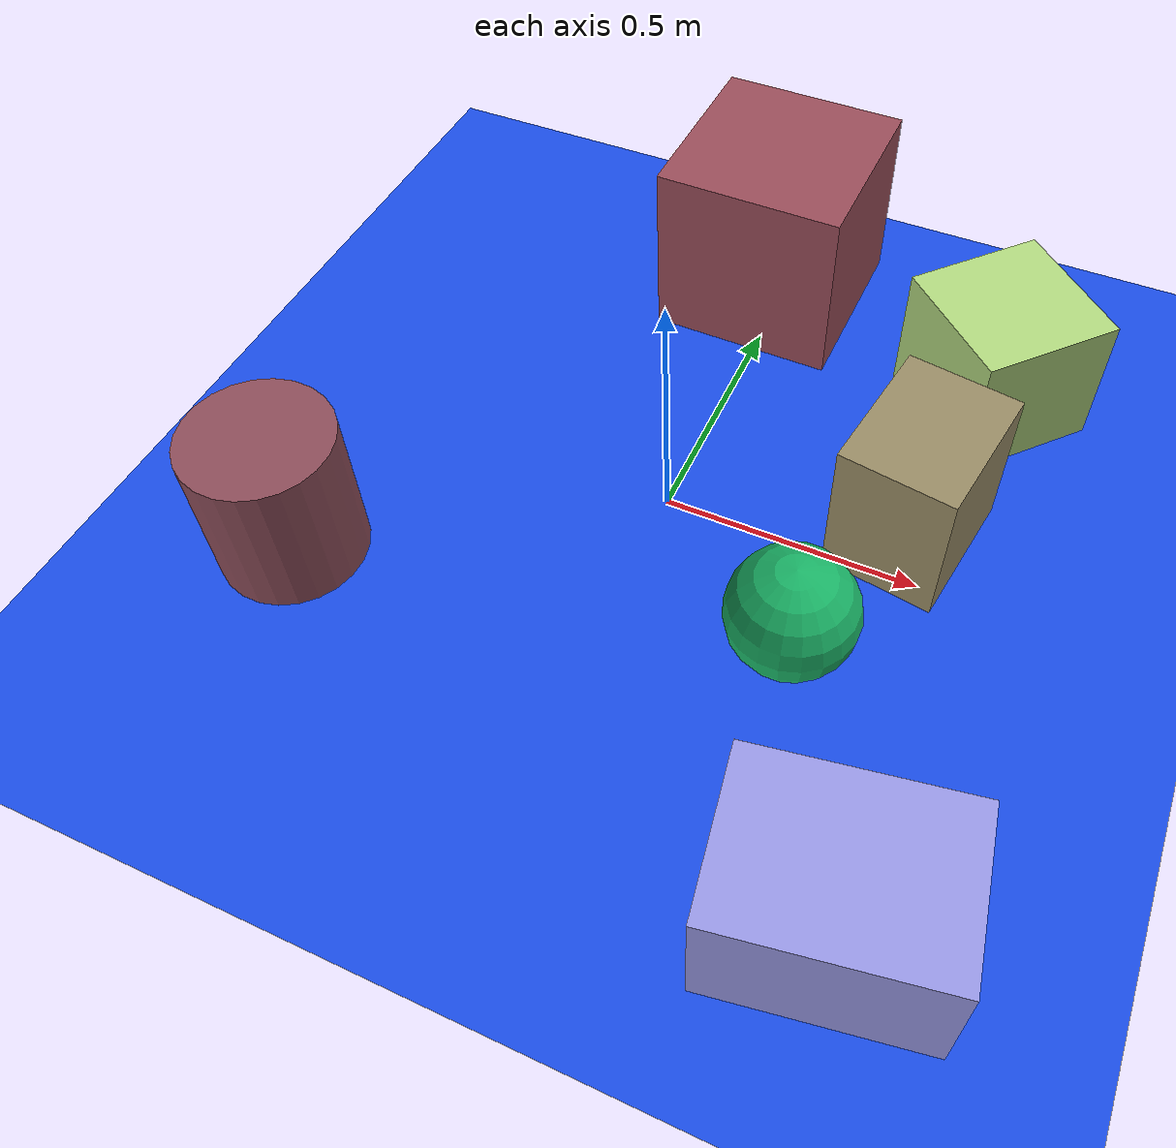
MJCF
<mujoco>
   <asset>
<texture type="skybox" builtin="gradient" rgb1="0.0 0.8 0.5" rgb2="0.2 0.0 0.6" width="500" height="500"/>
<texture name="checker_0" builtin="checker" rgb1="0.8 0.3 0.6" rgb2="0.4 0.8 0.2" width="500" height="500"/>
<texture name="gradient_1" builtin="gradient" rgb1="0.3 0.1 0.2" rgb2="0.8 0.5 0.5" width="500" height="500"/>
<texture name="gradient_2" builtin="gradient" rgb1="0.9 1.0 0.7" rgb2="0.5 0.7 0.3" width="500" height="500"/>
<texture name="flat_3" builtin="flat" rgb1="0.6 0.6 0.9" rgb2="0.6 0.6 0.9"  width="500" height="500"/>
<texture name="flat_4" builtin="flat" rgb1="0.1 0.7 0.4" rgb2="0.1 0.7 0.4"  width="500" height="500"/>
<texture name="gradient_5" builtin="gradient" rgb1="0.4 0.1 0.1" rgb2="0.8 0.5 0.6" width="500" height="500"/><material name="checker_0_mat" reflectance="0.34630741940807375" texrepeat="6 6" texture="checker_0" texuniform="false" />
<material name="gradient_1_mat" reflectance="0.4006193611332035" texture="gradient_1" texuniform="true"/>
<material name="gradient_2_mat" reflectance="0.8158389596095754" texture="gradient_2" texuniform="true"/>
<material name="flat_3_mat" reflectance="0.7538101564954601" texture="flat_3" texuniform="true"/>
<material name="flat_4_mat" reflectance="0.3793935328115371" texture="flat_4" texuniform="true"/>
<material name="gradient_5_mat" reflectance="0.608035890433957" texture="gradient_5" texuniform="true"/>
   </asset>

   <worldbody>
     <geom type="plane" size="1 1 0.1" rgba="0.1 0.3 0.9 1" />
<light pos="0.8342219312845953 -0.27823041773338275 2" dir="0 0 -1" cutoff="90" diffuse="1 1 1" specular="1 1 1"/>
<light pos="-0.4238654747417714 0.00329689649857956 2" dir="0 0 -1" cutoff="90" diffuse="1 1 1" specular="1 1 1"/>
<geom type="box" pos="0.45 0.11 0.15" size="0.14 0.11 0.15" material="checker_0_mat" euler="0 0 81" />
<geom type="cylinder" pos="-0.6 -0.37 0.15" size="0.14 0.15 0.15" material="gradient_1_mat" euler="0 0 67" />
<geom type="box" pos="0.5 0.5 0.14" size="0.14 0.14 0.14" material="gradient_2_mat" euler="0 0 47" />
<geom type="box" pos="0.56 -0.66 0.13" size="0.19 0.14 0.13" material="flat_3_mat" euler="0 0 9" />
<geom type="sphere" pos="0.33 -0.22 0.12" size="0.12 0.12 0.12" material="flat_4_mat" euler="0 0 63" />
<geom type="box" pos="-0.03 0.65 0.19" size="0.19 0.19 0.19" material="gradient_5_mat" euler="0 0 89" /><camera euler="60 0 180" fovy="60" name="camera1" pos="-0.2 -1.5 1"></camera>   </worldbody>
   <visual>
      <headlight diffuse="0.7 0.7 0.7"/>
   </visual>
</mujoco>
